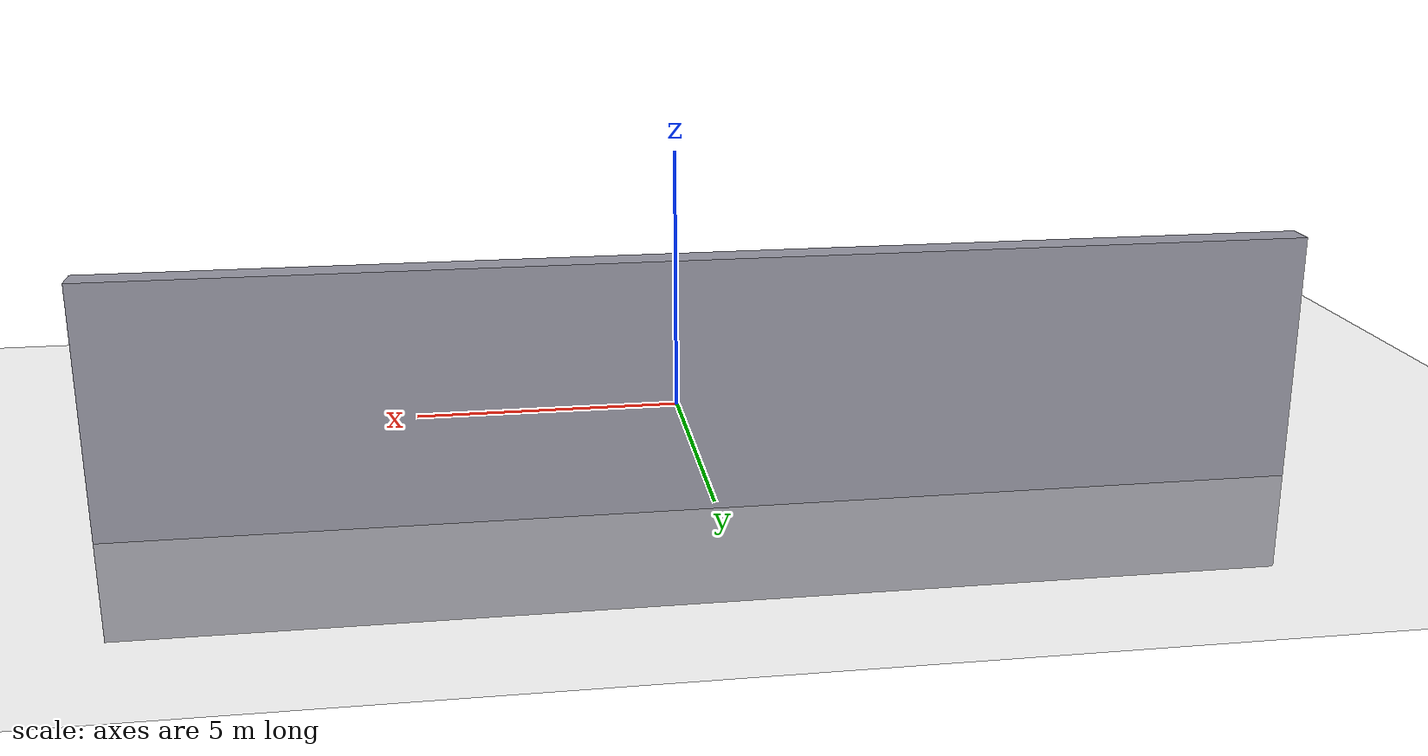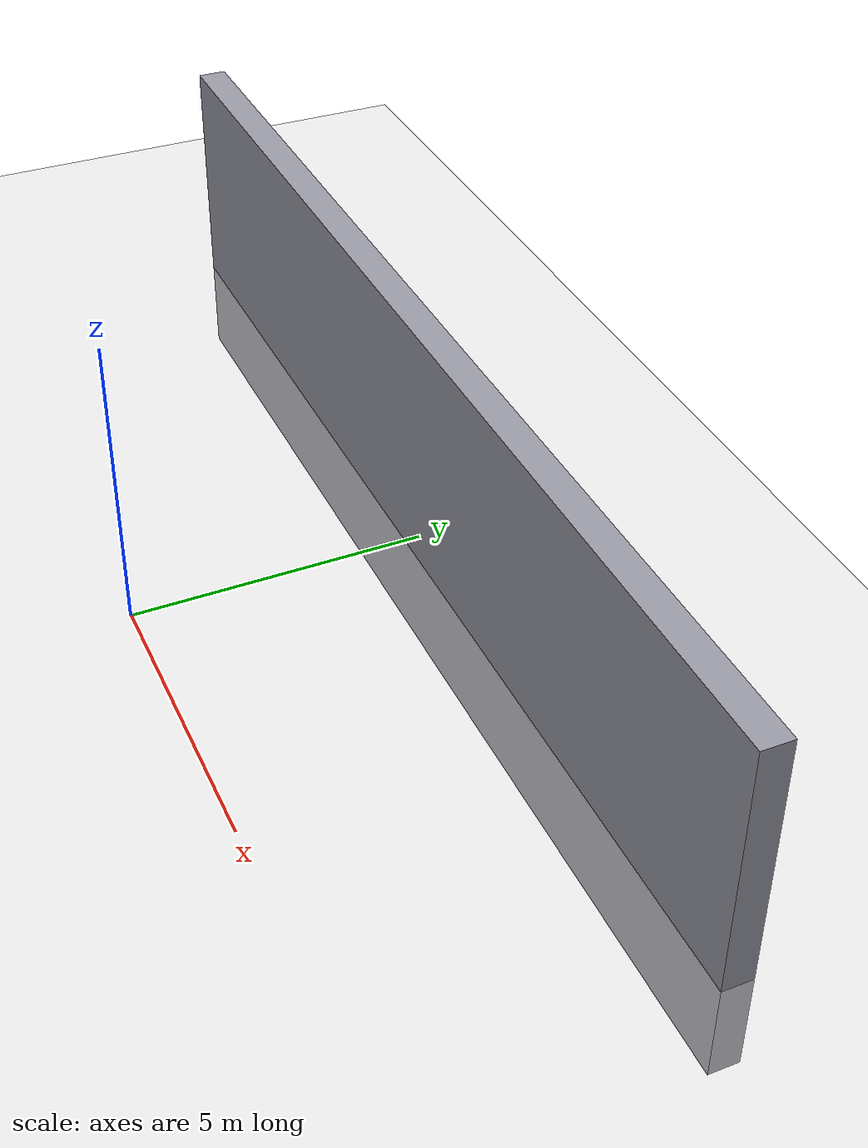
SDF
<?xml version="1.0"?>
<sdf version="1.6">
  <world name="empty">
    <!-- ★ 在 world 级别声明重力 -->
    <gravity>0 0 -9.81</gravity>

    <!-- 物理引擎 -->
    <physics name="ode_physics" type="ode">
      <max_step_size>0.002</max_step_size>
      <real_time_update_rate>500</real_time_update_rate>
      <ode>
        <solver>
          <type>quick</type>
          <iters>50</iters>
          <sor>1.3</sor>
        </solver>
        <constraints>
          <cfm>0.0</cfm>
          <erp>0.2</erp>
          <contact_max_correcting_vel>100.0</contact_max_correcting_vel>
          <contact_surface_layer>0.001</contact_surface_layer>
        </constraints>
      </ode>
    </physics>

    <!-- 光照 -->
    <scene>
      <ambient>0.4 0.4 0.4 1</ambient>
      <diffuse>0.8 0.8 0.8 1</diffuse>
      <specular>0.1 0.1 0.1 1</specular>
    </scene>

    <light name="sun" type="directional">
      <cast_shadows>true</cast_shadows>
      <pose>0 0 10 0 0 0</pose>
      <diffuse>0.8 0.8 0.8 1</diffuse>
      <specular>0.2 0.2 0.2 1</specular>
      <attenuation>
        <range>100</range>
        <constant>0.9</constant>
        <linear>0.01</linear>
        <quadratic>0.001</quadratic>
      </attenuation>
      <direction>-0.5 0.1 -0.9</direction>
    </light>

    <!-- 地面 -->
    <include>
      <uri>model://ground_plane</uri>
    </include>

    <model name="walls" static="true">
      <static>true</static>
      <pose>0 0 0 0 0 0</pose>
      <link name="wall_east">
        <pose>0 5 1.25 0 0 0</pose>
        <collision name="collision">
          <geometry><box><size>20 0.5 6</size></box></geometry>
          <surface>
            <friction><ode><mu>1.2</mu><mu2>1.2</mu2></ode></friction>
          </surface>
        </collision>
        <visual name="visual">
          <geometry><box><size>20 0.5 6</size></box></geometry>
          <material><ambient>0.6 0.6 0.65 1</ambient></material>
        </visual>
      </link>
    </model>

    <plugin name="gazebo_ros_state" filename="libgazebo_ros_state.so">
      <ros>
        <namespace>/demo</namespace>
        <remapping>model_states:=model_states_demo</remapping>
        <remapping>link_states:=link_states_demo</remapping>
      </ros>

      <update_rate>1.0</update_rate>
    </plugin>

  </world>
</sdf>
